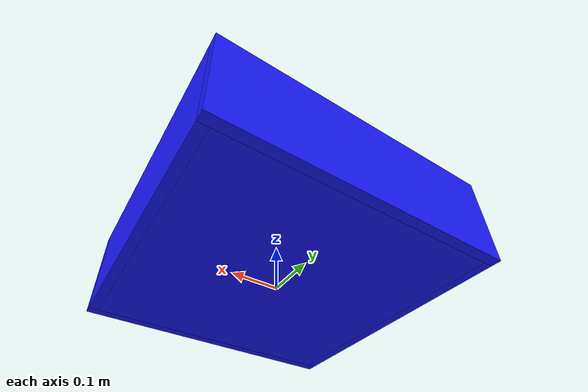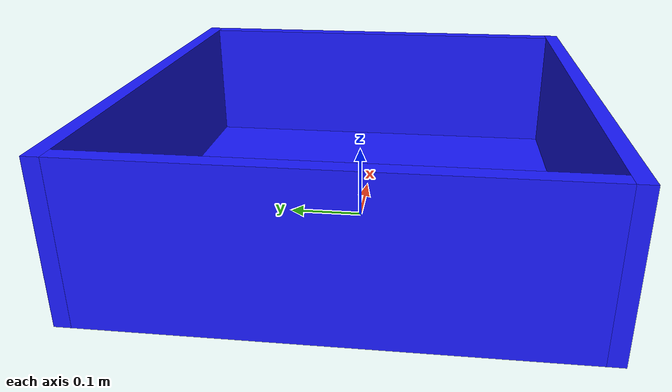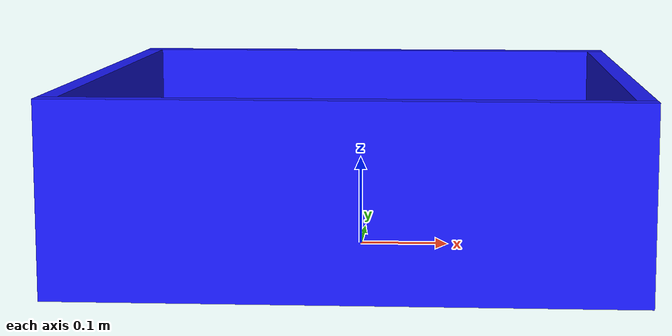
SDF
<?xml version="1.0" ?>
<sdf version="1.4">
	<model name="box">

		<link name="main">
			<inertial>
				<mass> 10 </mass>
			</inertial>
<!-- bottom -->
			<collision name="bottom_collision">
				<pose> 0 0 0.01 0 0 0 </pose>
				<geometry>
					<box>
						<size> 0.56 0.56 0.02 </size>
					</box>
				</geometry>
				<surface>
					<bounce>
						<restitution_coefficient> 0 </restitution_coefficient>
					</bounce>
					<friction>
						<ode>
							<mu> 0.9 </mu>
							<mu2> 0.9 </mu2>
						</ode>
					</friction>
				</surface>
			</collision>

			<visual name="bottom_visual">
				<pose> 0 0 0.01 0 0 0 </pose>
				<material>
					<ambient> 0.1 0.1 0.4 1.0 </ambient>
					<diffuse> 0.1 0.1 1.0 1.0 </diffuse>
					<specular> 1.0 1.0 1.0 1.0 </specular>
					<emissive> 0.0 0.0 0.3 1.0 </emissive>
				</material>
				<geometry>
					<box>
						<size> 0.56 0.56 0.02 </size>
					</box>
				</geometry>
			</visual>
<!-- front -->
			<collision name="front_collision">
				<pose> 0 0.29 0.1 0 0 0 </pose>
				<geometry>
					<box>
						<size> 0.6 0.02 0.2 </size>
					</box>
				</geometry>
				<surface>
					<bounce>
						<restitution_coefficient> 0 </restitution_coefficient>
					</bounce>
					<friction>
						<ode>
							<mu> 0.9 </mu>
							<mu2> 0.9 </mu2>
						</ode>
					</friction>
				</surface>
			</collision>

			<visual name="front_visual">
				<pose> 0 0.29 0.1 0 0 0 </pose>
				<material>
					<ambient> 0.1 0.1 0.4 1.0 </ambient>
					<diffuse> 0.1 0.1 1.0 1.0 </diffuse>
					<specular> 1.0 1.0 1.0 1.0 </specular>
					<emissive> 0.0 0.0 0.3 1.0 </emissive>
				</material>
				<geometry>
					<box>
						<size> 0.6 0.02 0.2 </size>
					</box>
				</geometry>
			</visual>
<!-- back -->
			<collision name="back_collision">
				<pose> 0 -0.29 0.1 0 0 0 </pose>
				<geometry>
					<box>
						<size> 0.6 0.02 0.2 </size>
					</box>
				</geometry>
				<surface>
					<bounce>
						<restitution_coefficient> 0 </restitution_coefficient>
					</bounce>
					<friction>
						<ode>
							<mu> 0.9 </mu>
							<mu2> 0.9 </mu2>
						</ode>
					</friction>
				</surface>
			</collision>

			<visual name="back_visual">
				<pose> 0 -0.29 0.1 0 0 0 </pose>
				<material>
					<ambient> 0.1 0.1 0.4 1.0 </ambient>
					<diffuse> 0.1 0.1 1.0 1.0 </diffuse>
					<specular> 1.0 1.0 1.0 1.0 </specular>
					<emissive> 0.0 0.0 0.3 1.0 </emissive>
				</material>
				<geometry>
					<box>
						<size> 0.6 0.02 0.2 </size>
					</box>
				</geometry>
			</visual>
<!-- left -->
			<collision name="left_collision">
				<pose> -0.29 0 0.1 0 0 0 </pose>
				<geometry>
					<box>
						<size> 0.02 0.56 0.2 </size>
					</box>
				</geometry>
				<surface>
					<bounce>
						<restitution_coefficient> 0 </restitution_coefficient>
					</bounce>
					<friction>
						<ode>
							<mu> 0.9 </mu>
							<mu2> 0.9 </mu2>
						</ode>
					</friction>
				</surface>
			</collision>

			<visual name="left_visual">
				<pose> -0.29 0 0.1 0 0 0 </pose>
				<material>
					<ambient> 0.1 0.1 0.4 1.0 </ambient>
					<diffuse> 0.1 0.1 1.0 1.0 </diffuse>
					<specular> 1.0 1.0 1.0 1.0 </specular>
					<emissive> 0.0 0.0 0.3 1.0 </emissive>
				</material>
				<geometry>
					<box>
						<size> 0.02 0.56 0.2 </size>
					</box>
				</geometry>
			</visual>
<!-- right -->
			<collision name="right_collision">
				<pose> 0.29 0 0.1 0 0 0 </pose>
				<geometry>
					<box>
						<size> 0.02 0.56 0.2 </size>
					</box>
				</geometry>
				<surface>
					<bounce>
						<restitution_coefficient> 0 </restitution_coefficient>
					</bounce>
					<friction>
						<ode>
							<mu> 0.9 </mu>
							<mu2> 0.9 </mu2>
						</ode>
					</friction>
				</surface>
			</collision>

			<visual name="right_visual">
				<pose> 0.29 0 0.1 0 0 0 </pose>
				<material>
					<ambient> 0.1 0.1 0.4 1.0 </ambient>
					<diffuse> 0.1 0.1 1.0 1.0 </diffuse>
					<specular> 1.0 1.0 1.0 1.0 </specular>
					<emissive> 0.0 0.0 0.3 1.0 </emissive>
				</material>
				<geometry>
					<box>
						<size> 0.02 0.56 0.2 </size>
					</box>
				</geometry>
			</visual>
		</link>
	</model>
</sdf>
